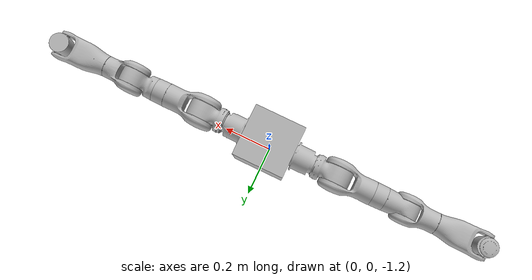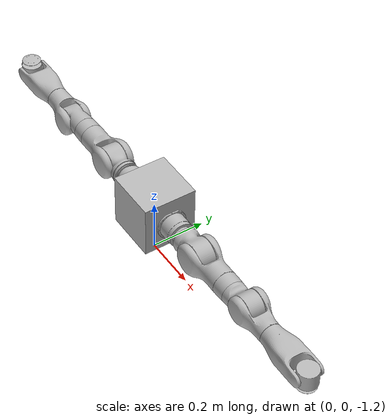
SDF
<sdf version='1.7'>
  <model name='dual_arm'>
    <joint name='world_to_central_base' type='fixed'>
      <pose relative_to='__model__'>0 0 0 3.14159 0.001593 3.14159</pose>
      <parent>world</parent>
      <child>central_base</child>
    </joint>
    <link name='central_base'>
      <pose relative_to='world_to_central_base'>0 0 0 0 -0 0</pose>
      <inertial>
        <pose>-0 0 1 0 -0 0</pose>
        <mass>0.2</mass>
        <inertia>
          <ixx>0.0002</ixx>
          <ixy>0</ixy>
          <ixz>-1.73472e-18</ixz>
          <iyy>0.002405</iyy>
          <iyz>0</iyz>
          <izz>0.002405</izz>
        </inertia>
      </inertial>
      <collision name='central_base_collision'>
        <pose>0 0 1 0 -0 0</pose>
        <geometry>
          <box>
            <size>0.2 0.2 0.2</size>
          </box>
        </geometry>
        <surface>
          <contact>
            <ode/>
          </contact>
          <friction>
            <ode/>
          </friction>
        </surface>
      </collision>
      <collision name='central_base_fixed_joint_lump__left_base_collision_1'>
        <pose>-0.105 0 1 0 -1.5708 0</pose>
        <geometry>
          <mesh>
            <scale>1 1 1</scale>
            <uri>/home/sreejith/dual_arm_ws/src/dual_arm_description/meshes/BASE_Mesh.obj</uri>
          </mesh>
        </geometry>
      </collision>
      <collision name='central_base_fixed_joint_lump__right_base_collision_2'>
        <pose>0.105 0 1 0 1.5708 0</pose>
        <geometry>
          <mesh>
            <scale>1 1 1</scale>
            <uri>/home/sreejith/dual_arm_ws/src/dual_arm_description/meshes/BASE_Mesh.obj</uri>
          </mesh>
        </geometry>
      </collision>
      <visual name='central_base_visual'>
        <pose>0 0 1 0 -0 0</pose>
        <geometry>
          <box>
            <size>0.2 0.2 0.2</size>
          </box>
        </geometry>
        <material>
          <script>
            <name>ambient</name>
            <uri>file://media/materials/scripts/gazebo.material</uri>
          </script>
        </material>
      </visual>
      <visual name='central_base_fixed_joint_lump__left_base_visual_1'>
        <pose>-0.105 0 1 0 -1.5708 0</pose>
        <geometry>
          <mesh>
            <scale>1 1 1</scale>
            <uri>/home/sreejith/dual_arm_ws/src/dual_arm_description/meshes/BASE_Mesh.obj</uri>
          </mesh>
        </geometry>
      </visual>
      <visual name='central_base_fixed_joint_lump__right_base_visual_2'>
        <pose>0.105 0 1 0 1.5708 0</pose>
        <geometry>
          <mesh>
            <scale>1 1 1</scale>
            <uri>/home/sreejith/dual_arm_ws/src/dual_arm_description/meshes/BASE_Mesh.obj</uri>
          </mesh>
        </geometry>
      </visual>
    </link>
    <joint name='left_joint1' type='revolute'>
      <pose relative_to='central_base'>-0.105 0 1 0 -1.57 0</pose>
      <parent>central_base</parent>
      <child>left_link1</child>
      <axis>
        <xyz>0 0 -1</xyz>
        <limit>
          <lower>-3.1066</lower>
          <upper>3.1066</upper>
          <effort>100</effort>
          <velocity>6.28</velocity>
        </limit>
        <dynamics>
          <spring_reference>0</spring_reference>
          <spring_stiffness>0</spring_stiffness>
        </dynamics>
      </axis>
    </joint>
    <link name='left_link1'>
      <pose relative_to='left_joint1'>0 0 0 0 -0 0</pose>
      <inertial>
        <pose>0 0 0 0 -0 0</pose>
        <mass>0.1</mass>
        <inertia>
          <ixx>0.0001</ixx>
          <ixy>0</ixy>
          <ixz>0</ixz>
          <iyy>0.0001</iyy>
          <iyz>0</iyz>
          <izz>0.0001</izz>
        </inertia>
      </inertial>
      <collision name='left_link1_collision'>
        <pose>1e-06 0 0 0 -0 0</pose>
        <geometry>
          <mesh>
            <scale>1 1 1</scale>
            <uri>/home/sreejith/dual_arm_ws/src/dual_arm_description/meshes/LINK1_Mesh.obj</uri>
          </mesh>
        </geometry>
      </collision>
      <visual name='left_link1_visual'>
        <pose>1e-06 0 0 0 -0 0</pose>
        <geometry>
          <mesh>
            <scale>1 1 1</scale>
            <uri>/home/sreejith/dual_arm_ws/src/dual_arm_description/meshes/LINK1_Mesh.obj</uri>
          </mesh>
        </geometry>
      </visual>
    </link>
    <joint name='left_joint2' type='revolute'>
      <pose relative_to='left_link1'>0 0 0.1743 0 -0 0</pose>
      <parent>left_link1</parent>
      <child>left_link2</child>
      <axis>
        <xyz>0 -1 0</xyz>
        <limit>
          <lower>-2.0943</lower>
          <upper>2.0943</upper>
          <effort>100</effort>
          <velocity>6.28</velocity>
        </limit>
        <dynamics>
          <spring_reference>0</spring_reference>
          <spring_stiffness>0</spring_stiffness>
        </dynamics>
      </axis>
    </joint>
    <link name='left_link2'>
      <pose relative_to='left_joint2'>0 0 0 0 -0 0</pose>
      <inertial>
        <pose>0 0 0 0 -0 0</pose>
        <mass>0.1</mass>
        <inertia>
          <ixx>0.0001</ixx>
          <ixy>0</ixy>
          <ixz>0</ixz>
          <iyy>0.0001</iyy>
          <iyz>0</iyz>
          <izz>0.0001</izz>
        </inertia>
      </inertial>
      <collision name='left_link2_collision'>
        <pose>0 0 0 0 -0 0</pose>
        <geometry>
          <mesh>
            <scale>1 1 1</scale>
            <uri>/home/sreejith/dual_arm_ws/src/dual_arm_description/meshes/link2_Mesh.obj</uri>
          </mesh>
        </geometry>
      </collision>
      <visual name='left_link2_visual'>
        <pose>0 0 0 0 -0 0</pose>
        <geometry>
          <mesh>
            <scale>1 1 1</scale>
            <uri>/home/sreejith/dual_arm_ws/src/dual_arm_description/meshes/link2_Mesh.obj</uri>
          </mesh>
        </geometry>
      </visual>
    </link>
    <joint name='left_joint3' type='revolute'>
      <pose relative_to='left_link2'>0 0 0 0 -0 0</pose>
      <parent>left_link2</parent>
      <child>left_link3</child>
      <axis>
        <xyz>0 0 1</xyz>
        <limit>
          <lower>-3.1066</lower>
          <upper>3.1066</upper>
          <effort>100</effort>
          <velocity>6.28</velocity>
        </limit>
        <dynamics>
          <spring_reference>0</spring_reference>
          <spring_stiffness>0</spring_stiffness>
        </dynamics>
      </axis>
    </joint>
    <link name='left_link3'>
      <pose relative_to='left_joint3'>0 0 0 0 -0 0</pose>
      <inertial>
        <pose>0 0 0 0 -0 0</pose>
        <mass>0.1</mass>
        <inertia>
          <ixx>0.0001</ixx>
          <ixy>0</ixy>
          <ixz>0</ixz>
          <iyy>0.0001</iyy>
          <iyz>0</iyz>
          <izz>0.0001</izz>
        </inertia>
      </inertial>
      <collision name='left_link3_collision'>
        <pose>0 0 0 0 -0 3.1415</pose>
        <geometry>
          <mesh>
            <scale>1 1 1</scale>
            <uri>/home/sreejith/dual_arm_ws/src/dual_arm_description/meshes/LINK3_LOWER_Mesh.obj</uri>
          </mesh>
        </geometry>
      </collision>
      <collision name='left_link3_collision_1'>
        <pose>0 0 0 0 -0 3.1415</pose>
        <geometry>
          <mesh>
            <scale>1 1 1</scale>
            <uri>/home/sreejith/dual_arm_ws/src/dual_arm_description/meshes/LINK3_UPPER_Mesh.obj</uri>
          </mesh>
        </geometry>
      </collision>
      <visual name='left_link3_visual'>
        <pose>0 0 0 0 -0 3.1415</pose>
        <geometry>
          <mesh>
            <scale>1 1 1</scale>
            <uri>/home/sreejith/dual_arm_ws/src/dual_arm_description/meshes/LINK3_LOWER_Mesh.obj</uri>
          </mesh>
        </geometry>
      </visual>
      <visual name='left_link3_visual_1'>
        <pose>0 0 0 0 -0 3.1415</pose>
        <geometry>
          <mesh>
            <scale>1 1 1</scale>
            <uri>/home/sreejith/dual_arm_ws/src/dual_arm_description/meshes/LINK3_UPPER_Mesh.obj</uri>
          </mesh>
        </geometry>
      </visual>
    </link>
    <joint name='left_joint4' type='revolute'>
      <pose relative_to='left_link3'>-0.018 0 0.287 0 -0 0</pose>
      <parent>left_link3</parent>
      <child>left_link4</child>
      <axis>
        <xyz>0 1 0</xyz>
        <limit>
          <lower>-2.5307</lower>
          <upper>1.0471</upper>
          <effort>100</effort>
          <velocity>6.28</velocity>
        </limit>
        <dynamics>
          <spring_reference>0</spring_reference>
          <spring_stiffness>0</spring_stiffness>
        </dynamics>
      </axis>
    </joint>
    <link name='left_link4'>
      <pose relative_to='left_joint4'>0 0 0 0 -0 0</pose>
      <inertial>
        <pose>0 0 0 0 -0 0</pose>
        <mass>0.1</mass>
        <inertia>
          <ixx>0.0001</ixx>
          <ixy>0</ixy>
          <ixz>0</ixz>
          <iyy>0.0001</iyy>
          <iyz>0</iyz>
          <izz>0.0001</izz>
        </inertia>
      </inertial>
      <collision name='left_link4_collision'>
        <pose>0 0 0 0 0 -3.1415</pose>
        <geometry>
          <mesh>
            <scale>1 1 1</scale>
            <uri>/home/sreejith/dual_arm_ws/src/dual_arm_description/meshes/LINK4_Mesh.obj</uri>
          </mesh>
        </geometry>
      </collision>
      <visual name='left_link4_visual'>
        <pose>0 0 0 0 0 -3.1415</pose>
        <geometry>
          <mesh>
            <scale>1 1 1</scale>
            <uri>/home/sreejith/dual_arm_ws/src/dual_arm_description/meshes/LINK4_Mesh.obj</uri>
          </mesh>
        </geometry>
      </visual>
    </link>
    <joint name='left_joint5' type='revolute'>
      <pose relative_to='left_link4'>0.018 0 0.314 0 -0 0</pose>
      <parent>left_link4</parent>
      <child>left_link5</child>
      <axis>
        <xyz>0 0 1</xyz>
        <limit>
          <lower>-3.1066</lower>
          <upper>3.1066</upper>
          <effort>100</effort>
          <velocity>6.28</velocity>
        </limit>
        <dynamics>
          <spring_reference>0</spring_reference>
          <spring_stiffness>0</spring_stiffness>
        </dynamics>
      </axis>
    </joint>
    <link name='left_link5'>
      <pose relative_to='left_joint5'>0 0 0 0 -0 0</pose>
      <inertial>
        <pose>0 0 0 0 -0 0</pose>
        <mass>0.1</mass>
        <inertia>
          <ixx>0.0001</ixx>
          <ixy>0</ixy>
          <ixz>0</ixz>
          <iyy>0.0001</iyy>
          <iyz>0</iyz>
          <izz>0.0001</izz>
        </inertia>
      </inertial>
      <collision name='left_link5_collision'>
        <pose>0 0 0 0 -0 0</pose>
        <geometry>
          <mesh>
            <scale>1 1 1</scale>
            <uri>/home/sreejith/dual_arm_ws/src/dual_arm_description/meshes/LINK5_Mesh.obj</uri>
          </mesh>
        </geometry>
      </collision>
      <visual name='left_link5_visual'>
        <pose>0 0 0 0 -0 0</pose>
        <geometry>
          <mesh>
            <scale>1 1 1</scale>
            <uri>/home/sreejith/dual_arm_ws/src/dual_arm_description/meshes/LINK5_Mesh.obj</uri>
          </mesh>
        </geometry>
      </visual>
    </link>
    <joint name='left_joint6' type='revolute'>
      <pose relative_to='left_link5'>0 0 0 0 -0 0</pose>
      <parent>left_link5</parent>
      <child>left_link6</child>
      <axis>
        <xyz>0 1 0</xyz>
        <limit>
          <lower>-1.0471</lower>
          <upper>1.0471</upper>
          <effort>100</effort>
          <velocity>6.28</velocity>
        </limit>
        <dynamics>
          <spring_reference>0</spring_reference>
          <spring_stiffness>0</spring_stiffness>
        </dynamics>
      </axis>
    </joint>
    <link name='left_link6'>
      <pose relative_to='left_joint6'>0 0 0 0 -0 0</pose>
      <inertial>
        <pose>0 0 0 0 -0 0</pose>
        <mass>0.1</mass>
        <inertia>
          <ixx>0.0001</ixx>
          <ixy>0</ixy>
          <ixz>0</ixz>
          <iyy>0.0001</iyy>
          <iyz>0</iyz>
          <izz>0.0001</izz>
        </inertia>
      </inertial>
      <collision name='left_link6_collision'>
        <pose>0 0 0 0 -0 0</pose>
        <geometry>
          <mesh>
            <scale>1 1 1</scale>
            <uri>/home/sreejith/dual_arm_ws/src/dual_arm_description/meshes/LINK6_Mesh.obj</uri>
          </mesh>
        </geometry>
      </collision>
      <visual name='left_link6_visual'>
        <pose>0 0 0 0 -0 0</pose>
        <geometry>
          <mesh>
            <scale>1 1 1</scale>
            <uri>/home/sreejith/dual_arm_ws/src/dual_arm_description/meshes/LINK6_Mesh.obj</uri>
          </mesh>
        </geometry>
      </visual>
    </link>
    <joint name='left_joint7' type='revolute'>
      <pose relative_to='left_link6'>0 0 0 0 -0 0</pose>
      <parent>left_link6</parent>
      <child>left_ttt</child>
      <axis>
        <xyz>1 0 0</xyz>
        <limit>
          <lower>-1.5707</lower>
          <upper>1.5707</upper>
          <effort>100</effort>
          <velocity>6.28</velocity>
        </limit>
        <dynamics>
          <spring_reference>0</spring_reference>
          <spring_stiffness>0</spring_stiffness>
        </dynamics>
      </axis>
    </joint>
    <link name='left_ttt'>
      <pose relative_to='left_joint7'>0 0 0 0 -0 0</pose>
      <inertial>
        <pose>0 0 0 0 -0 0</pose>
        <mass>0.1</mass>
        <inertia>
          <ixx>0.0001</ixx>
          <ixy>0</ixy>
          <ixz>0</ixz>
          <iyy>0.0001</iyy>
          <iyz>0</iyz>
          <izz>0.0001</izz>
        </inertia>
      </inertial>
      <visual name='left_ttt_visual'>
        <pose>0 0 0 3.1415 -1.5708 0</pose>
        <geometry>
          <mesh>
            <scale>1 1 1</scale>
            <uri>/home/sreejith/dual_arm_ws/src/dual_arm_description/meshes/tn__T_Arm_MarvinM6SLCCS_WKe8HJ_01_Mesh.obj</uri>
          </mesh>
        </geometry>
      </visual>
    </link>
    <joint name='right_joint1' type='revolute'>
      <pose relative_to='central_base'>0.105 0 1 0 1.57 0</pose>
      <parent>central_base</parent>
      <child>right_link1</child>
      <axis>
        <xyz>0 0 -1</xyz>
        <limit>
          <lower>-3.1066</lower>
          <upper>3.1066</upper>
          <effort>100</effort>
          <velocity>6.28</velocity>
        </limit>
        <dynamics>
          <spring_reference>0</spring_reference>
          <spring_stiffness>0</spring_stiffness>
        </dynamics>
      </axis>
    </joint>
    <link name='right_link1'>
      <pose relative_to='right_joint1'>0 0 0 0 -0 0</pose>
      <inertial>
        <pose>0 0 0 0 -0 0</pose>
        <mass>0.1</mass>
        <inertia>
          <ixx>0.0001</ixx>
          <ixy>0</ixy>
          <ixz>0</ixz>
          <iyy>0.0001</iyy>
          <iyz>0</iyz>
          <izz>0.0001</izz>
        </inertia>
      </inertial>
      <collision name='right_link1_collision'>
        <pose>1e-06 0 0 0 -0 0</pose>
        <geometry>
          <mesh>
            <scale>1 1 1</scale>
            <uri>/home/sreejith/dual_arm_ws/src/dual_arm_description/meshes/LINK1_Mesh.obj</uri>
          </mesh>
        </geometry>
      </collision>
      <visual name='right_link1_visual'>
        <pose>1e-06 0 0 0 -0 0</pose>
        <geometry>
          <mesh>
            <scale>1 1 1</scale>
            <uri>/home/sreejith/dual_arm_ws/src/dual_arm_description/meshes/LINK1_Mesh.obj</uri>
          </mesh>
        </geometry>
      </visual>
    </link>
    <joint name='right_joint2' type='revolute'>
      <pose relative_to='right_link1'>0 0 0.1743 0 -0 0</pose>
      <parent>right_link1</parent>
      <child>right_link2</child>
      <axis>
        <xyz>0 -1 0</xyz>
        <limit>
          <lower>-2.0943</lower>
          <upper>2.0943</upper>
          <effort>100</effort>
          <velocity>6.28</velocity>
        </limit>
        <dynamics>
          <spring_reference>0</spring_reference>
          <spring_stiffness>0</spring_stiffness>
        </dynamics>
      </axis>
    </joint>
    <link name='right_link2'>
      <pose relative_to='right_joint2'>0 0 0 0 -0 0</pose>
      <inertial>
        <pose>0 0 0 0 -0 0</pose>
        <mass>0.1</mass>
        <inertia>
          <ixx>0.0001</ixx>
          <ixy>0</ixy>
          <ixz>0</ixz>
          <iyy>0.0001</iyy>
          <iyz>0</iyz>
          <izz>0.0001</izz>
        </inertia>
      </inertial>
      <collision name='right_link2_collision'>
        <pose>0 0 0 0 -0 0</pose>
        <geometry>
          <mesh>
            <scale>1 1 1</scale>
            <uri>/home/sreejith/dual_arm_ws/src/dual_arm_description/meshes/link2_Mesh.obj</uri>
          </mesh>
        </geometry>
      </collision>
      <visual name='right_link2_visual'>
        <pose>0 0 0 0 -0 0</pose>
        <geometry>
          <mesh>
            <scale>1 1 1</scale>
            <uri>/home/sreejith/dual_arm_ws/src/dual_arm_description/meshes/link2_Mesh.obj</uri>
          </mesh>
        </geometry>
      </visual>
    </link>
    <joint name='right_joint3' type='revolute'>
      <pose relative_to='right_link2'>0 0 0 0 -0 0</pose>
      <parent>right_link2</parent>
      <child>right_link3</child>
      <axis>
        <xyz>0 0 -1</xyz>
        <limit>
          <lower>-3.1066</lower>
          <upper>3.1066</upper>
          <effort>100</effort>
          <velocity>6.28</velocity>
        </limit>
        <dynamics>
          <spring_reference>0</spring_reference>
          <spring_stiffness>0</spring_stiffness>
        </dynamics>
      </axis>
    </joint>
    <link name='right_link3'>
      <pose relative_to='right_joint3'>0 0 0 0 -0 0</pose>
      <inertial>
        <pose>0 0 0 0 -0 0</pose>
        <mass>0.1</mass>
        <inertia>
          <ixx>0.0001</ixx>
          <ixy>0</ixy>
          <ixz>0</ixz>
          <iyy>0.0001</iyy>
          <iyz>0</iyz>
          <izz>0.0001</izz>
        </inertia>
      </inertial>
      <collision name='right_link3_collision'>
        <pose>0 0 0 0 -0 3.1415</pose>
        <geometry>
          <mesh>
            <scale>1 1 1</scale>
            <uri>/home/sreejith/dual_arm_ws/src/dual_arm_description/meshes/LINK3_LOWER_Mesh.obj</uri>
          </mesh>
        </geometry>
      </collision>
      <collision name='right_link3_collision_1'>
        <pose>0 0 0 0 -0 3.1415</pose>
        <geometry>
          <mesh>
            <scale>1 1 1</scale>
            <uri>/home/sreejith/dual_arm_ws/src/dual_arm_description/meshes/LINK3_UPPER_Mesh.obj</uri>
          </mesh>
        </geometry>
      </collision>
      <visual name='right_link3_visual'>
        <pose>0 0 0 0 -0 3.1415</pose>
        <geometry>
          <mesh>
            <scale>1 1 1</scale>
            <uri>/home/sreejith/dual_arm_ws/src/dual_arm_description/meshes/LINK3_LOWER_Mesh.obj</uri>
          </mesh>
        </geometry>
      </visual>
      <visual name='right_link3_visual_1'>
        <pose>0 0 0 0 -0 3.1415</pose>
        <geometry>
          <mesh>
            <scale>1 1 1</scale>
            <uri>/home/sreejith/dual_arm_ws/src/dual_arm_description/meshes/LINK3_UPPER_Mesh.obj</uri>
          </mesh>
        </geometry>
      </visual>
    </link>
    <joint name='right_joint4' type='revolute'>
      <pose relative_to='right_link3'>-0.018 0 0.287 0 -0 0</pose>
      <parent>right_link3</parent>
      <child>right_link4</child>
      <axis>
        <xyz>0 -1 0</xyz>
        <limit>
          <lower>-2.5307</lower>
          <upper>1.0471</upper>
          <effort>100</effort>
          <velocity>6.28</velocity>
        </limit>
        <dynamics>
          <spring_reference>0</spring_reference>
          <spring_stiffness>0</spring_stiffness>
        </dynamics>
      </axis>
    </joint>
    <link name='right_link4'>
      <pose relative_to='right_joint4'>0 0 0 0 -0 0</pose>
      <inertial>
        <pose>0 0 0 0 -0 0</pose>
        <mass>0.1</mass>
        <inertia>
          <ixx>0.0001</ixx>
          <ixy>0</ixy>
          <ixz>0</ixz>
          <iyy>0.0001</iyy>
          <iyz>0</iyz>
          <izz>0.0001</izz>
        </inertia>
      </inertial>
      <collision name='right_link4_collision'>
        <pose>0 0 0 0 0 -3.1415</pose>
        <geometry>
          <mesh>
            <scale>1 1 1</scale>
            <uri>/home/sreejith/dual_arm_ws/src/dual_arm_description/meshes/LINK4_Mesh.obj</uri>
          </mesh>
        </geometry>
      </collision>
      <visual name='right_link4_visual'>
        <pose>0 0 0 0 0 -3.1415</pose>
        <geometry>
          <mesh>
            <scale>1 1 1</scale>
            <uri>/home/sreejith/dual_arm_ws/src/dual_arm_description/meshes/LINK4_Mesh.obj</uri>
          </mesh>
        </geometry>
      </visual>
    </link>
    <joint name='right_joint5' type='revolute'>
      <pose relative_to='right_link4'>0.018 0 0.314 0 -0 0</pose>
      <parent>right_link4</parent>
      <child>right_link5</child>
      <axis>
        <xyz>0 0 -1</xyz>
        <limit>
          <lower>-3.1066</lower>
          <upper>3.1066</upper>
          <effort>100</effort>
          <velocity>6.28</velocity>
        </limit>
        <dynamics>
          <spring_reference>0</spring_reference>
          <spring_stiffness>0</spring_stiffness>
        </dynamics>
      </axis>
    </joint>
    <link name='right_link5'>
      <pose relative_to='right_joint5'>0 0 0 0 -0 0</pose>
      <inertial>
        <pose>0 0 0 0 -0 0</pose>
        <mass>0.1</mass>
        <inertia>
          <ixx>0.0001</ixx>
          <ixy>0</ixy>
          <ixz>0</ixz>
          <iyy>0.0001</iyy>
          <iyz>0</iyz>
          <izz>0.0001</izz>
        </inertia>
      </inertial>
      <collision name='right_link5_collision'>
        <pose>0 0 0 0 -0 0</pose>
        <geometry>
          <mesh>
            <scale>1 1 1</scale>
            <uri>/home/sreejith/dual_arm_ws/src/dual_arm_description/meshes/LINK5_Mesh.obj</uri>
          </mesh>
        </geometry>
      </collision>
      <visual name='right_link5_visual'>
        <pose>0 0 0 0 -0 0</pose>
        <geometry>
          <mesh>
            <scale>1 1 1</scale>
            <uri>/home/sreejith/dual_arm_ws/src/dual_arm_description/meshes/LINK5_Mesh.obj</uri>
          </mesh>
        </geometry>
      </visual>
    </link>
    <joint name='right_joint6' type='revolute'>
      <pose relative_to='right_link5'>0 0 0 0 -0 0</pose>
      <parent>right_link5</parent>
      <child>right_link6</child>
      <axis>
        <xyz>0 -1 0</xyz>
        <limit>
          <lower>-1.0471</lower>
          <upper>1.0471</upper>
          <effort>100</effort>
          <velocity>6.28</velocity>
        </limit>
        <dynamics>
          <spring_reference>0</spring_reference>
          <spring_stiffness>0</spring_stiffness>
        </dynamics>
      </axis>
    </joint>
    <link name='right_link6'>
      <pose relative_to='right_joint6'>0 0 0 0 -0 0</pose>
      <inertial>
        <pose>0 0 0 0 -0 0</pose>
        <mass>0.1</mass>
        <inertia>
          <ixx>0.0001</ixx>
          <ixy>0</ixy>
          <ixz>0</ixz>
          <iyy>0.0001</iyy>
          <iyz>0</iyz>
          <izz>0.0001</izz>
        </inertia>
      </inertial>
      <collision name='right_link6_collision'>
        <pose>0 0 0 0 -0 0</pose>
        <geometry>
          <mesh>
            <scale>1 1 1</scale>
            <uri>/home/sreejith/dual_arm_ws/src/dual_arm_description/meshes/LINK6_Mesh.obj</uri>
          </mesh>
        </geometry>
      </collision>
      <visual name='right_link6_visual'>
        <pose>0 0 0 0 -0 0</pose>
        <geometry>
          <mesh>
            <scale>1 1 1</scale>
            <uri>/home/sreejith/dual_arm_ws/src/dual_arm_description/meshes/LINK6_Mesh.obj</uri>
          </mesh>
        </geometry>
      </visual>
    </link>
    <joint name='right_joint7' type='revolute'>
      <pose relative_to='right_link6'>0 0 0 0 -0 0</pose>
      <parent>right_link6</parent>
      <child>right_ttt</child>
      <axis>
        <xyz>-1 0 0</xyz>
        <limit>
          <lower>-1.5707</lower>
          <upper>1.5707</upper>
          <effort>100</effort>
          <velocity>6.28</velocity>
        </limit>
        <dynamics>
          <spring_reference>0</spring_reference>
          <spring_stiffness>0</spring_stiffness>
        </dynamics>
      </axis>
    </joint>
    <link name='right_ttt'>
      <pose relative_to='right_joint7'>0 0 0 0 -0 0</pose>
      <inertial>
        <pose>0 0 0 0 -0 0</pose>
        <mass>0.1</mass>
        <inertia>
          <ixx>0.0001</ixx>
          <ixy>0</ixy>
          <ixz>0</ixz>
          <iyy>0.0001</iyy>
          <iyz>0</iyz>
          <izz>0.0001</izz>
        </inertia>
      </inertial>
      <visual name='right_ttt_visual'>
        <pose>0 0 0 3.1415 -1.5708 0</pose>
        <geometry>
          <mesh>
            <scale>1 1 1</scale>
            <uri>/home/sreejith/dual_arm_ws/src/dual_arm_description/meshes/tn__T_Arm_MarvinM6SLCCS_WKe8HJ_01_Mesh.obj</uri>
          </mesh>
        </geometry>
      </visual>
    </link>
    <static>0</static>
    <plugin name='gazebo_ros2_control' filename='libgazebo_ros2_control.so'>
      <parameters>/home/sreejith/dual_arm_ws/src/dual_arm_gazebo/config/dual_arm_gazebo_controllers.yaml</parameters>
    </plugin>
  </model>
</sdf>
